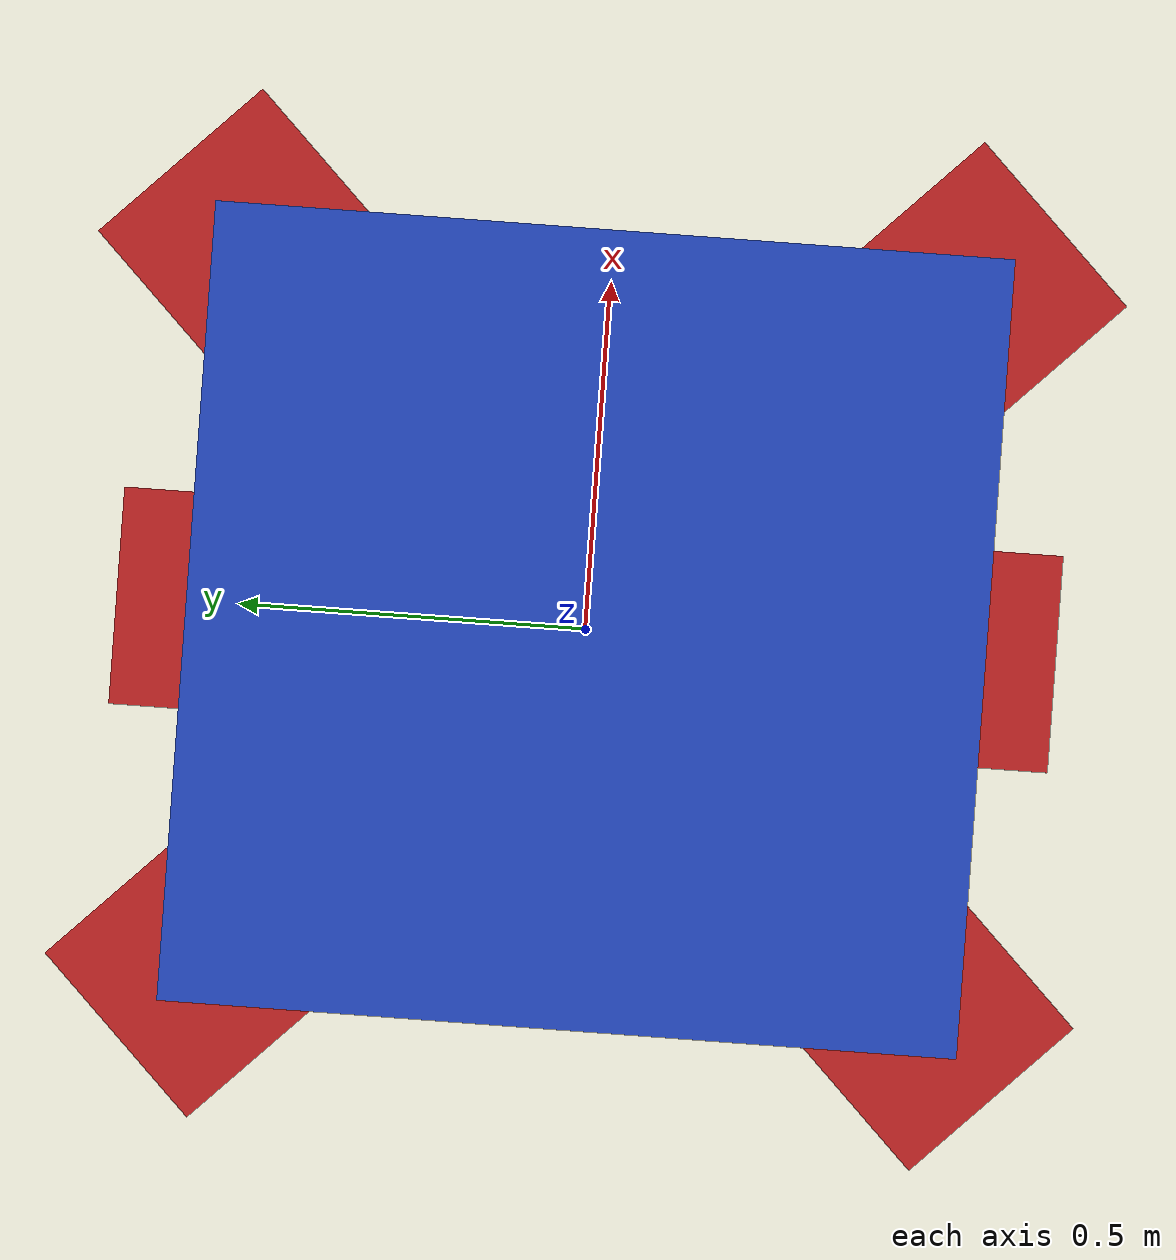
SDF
<?xml version="1.0"?>
<sdf version="1.7">
    <model name="cube">
        <pose>0 0 0 0 0 0</pose>
        <link name="frame">
            <pose>0 0 0 0 0 0</pose>
            <gravity>0</gravity>
            <inertial>
                <mass>1</mass>
            </inertial>
            <visual name='cube_visual'>
                <geometry>
                    <box>
                        <size>1 1 1</size>
                    </box>
                </geometry>
                <material>
                    <script>
                      <uri>file://media/materials/scripts/gazebo.material</uri>
                      <name>Gazebo/Blue</name>
                    </script>
                </material>
            </visual>
            <collision name='cube_collision'>
                <geometry>
                    <box>
                        <size>1 1 1</size>
                    </box>
                </geometry>
            </collision>
        </link>

        <include>
            <uri>model://cube_thruster</uri>
            <pose>-0.5 -0.5 0 0 1.5707 2.35619</pose>
            <name>thruster1</name>
        </include>

        <include>
            <uri>model://cube_thruster</uri>
            <pose>-0.5 0.5 0 0 -1.5707 0.785398</pose>
            <name>thruster2</name>
        </include>

        <include>
            <uri>model://cube_thruster</uri>
            <pose>0.5 0.5 0 0 1.5707 -0.785398</pose>
            <name>thruster3</name>
        </include>

        <include>
            <uri>model://cube_thruster</uri>
            <pose>0.5 -0.5 0 0 -1.5707 -2.35619</pose>
            <name>thruster4</name>
        </include>

        <include>
            <uri>model://cube_thruster</uri>
            <pose>0 -0.5 0 3.1415 3.1415 0</pose>
            <name>thruster5</name>
        </include>

        <include>
            <uri>model://cube_thruster</uri>
            <pose>0 0.5 0 3.1415 3.1415 3.1415</pose>
            <name>thruster6</name>
        </include>

        <joint name="thruster1_joint" type='fixed' >
            <parent>frame</parent>
            <child>thruster1::thruster</child>
        </joint>

        <joint name="thruster2_joint" type='fixed' >
            <parent>frame</parent>
            <child>thruster2::thruster</child>
        </joint>

        <joint name="thruster3_joint" type='fixed' >
            <parent>frame</parent>
            <child>thruster3::thruster</child>
        </joint>

        <joint name="thruster4_joint" type='fixed' >
            <parent>frame</parent>
            <child>thruster4::thruster</child>
        </joint>

        <joint name="thruster5_joint" type='fixed' >
            <parent>frame</parent>
            <child>thruster5::thruster</child>
        </joint>

        <joint name="thruster6_joint" type='fixed' >
            <parent>frame</parent>
            <child>thruster6::thruster</child>
        </joint>

        <!-- Thrust Vectors -->
        <plugin name="thruster_array" filename="libthruster_driver_plugin.so">
            <thruster_count>6</thruster_count>
            <ros>
                <namespace>/triton/controls</namespace>
                <remapping>output_forces</remapping>
            </ros>
        </plugin>
    </model>
</sdf>

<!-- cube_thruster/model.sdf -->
<sdf version="1.7">
    <model name="cube_thruster">
        <link name="thruster">
            <gravity>0</gravity>
            <inertial>
                <mass>1</mass>
                <inertia>
                    <ixx>0</ixx>
                    <ixy>0</ixy>
                    <ixz>0</ixz>
                    <iyy>0</iyy>
                    <iyz>0</iyz>
                    <izz>0</izz>
                  </inertia>
            </inertial>
            <visual name='visual'>
                <geometry>
                    <box>
                        <size>0.3 0.3 0.3</size>
                    </box>
                </geometry>
                <material>
                    <script>
                      <uri>file://media/materials/scripts/gazebo.material</uri>
                      <name>Gazebo/Red</name>
                    </script>
                </material>
            </visual>
        </link>
    </model>
</sdf>
